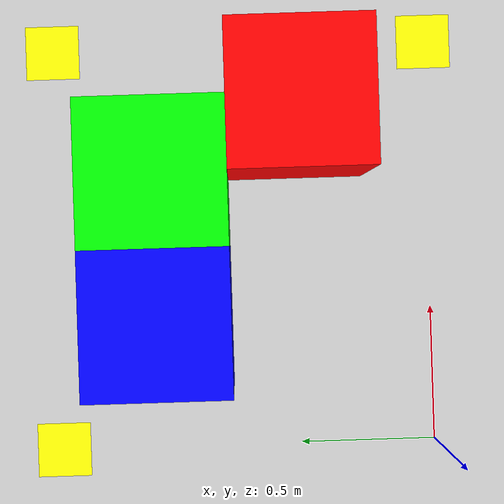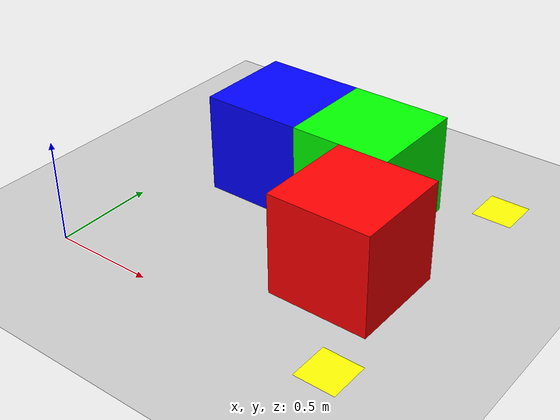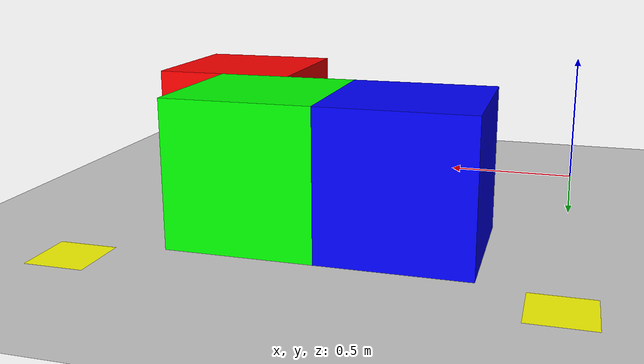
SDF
<sdf version="1.6">
 <world name="test_obstacles">
  <include><uri>model://ground_plane</uri></include>
  <include><uri>model://sun</uri></include>
  <model name="box1">
   <static>true</static>
   <pose>1.25 0.5 0.25 0 0 0</pose>
   <link name="link">
    <collision name="collision"><geometry><box><size>0.5 0.5 0.5</size></box></geometry></collision>
    <visual name="visual">
     <geometry><box><size>0.5 0.5 0.5</size></box></geometry>
     <material><ambient>1 0 0 1</ambient><diffuse>1 0 0 1</diffuse></material>
    </visual>
   </link>
  </model>
  <model name="box2">
   <static>true</static>
   <pose>1.0 1.0 0.25 0 0 0</pose>
   <link name="link">
    <collision name="collision"><geometry><box><size>0.5 0.5 0.5</size></box></geometry></collision>
    <visual name="visual">
     <geometry><box><size>0.5 0.5 0.5</size></box></geometry>
     <material><ambient>0 1 0 1</ambient><diffuse>0 1 0 1</diffuse></material>
    </visual>
   </link>
  </model>
  <model name="box3">
   <static>true</static>
   <pose>0.5 1.0 0.25 0 0 0</pose>
   <link name="link">
    <collision name="collision"><geometry><box><size>0.5 0.5 0.5</size></box></geometry></collision>
    <visual name="visual">
     <geometry><box><size>0.5 0.5 0.5</size></box></geometry>
     <material><ambient>0 0 1 1</ambient><diffuse>0 0 1 1</diffuse></material>
    </visual>
   </link>
  </model>
  <model name="waypoint1">
   <static>true</static>
   <pose>1.5 0 0.01 0 0 0</pose>
   <link name="link">
    <visual name="visual">
     <geometry><box><size>0.2 0.2 0</size></box></geometry>
     <material><ambient>1 1 0 1</ambient><diffuse>1 1 0 1</diffuse></material>
    </visual>
   </link>
  </model>
  <model name="waypoint2">
   <static>true</static>
   <pose>1.5 1.4 0.01 0 0 0</pose>
   <link name="link">
    <visual name="visual">
     <geometry><box><size>0.2 0.2 0</size></box></geometry>
     <material><ambient>1 1 0 1</ambient><diffuse>1 1 0 1</diffuse></material>
    </visual>
   </link>
  </model>
  <model name="waypoint3">
   <static>true</static>
   <pose>0 1.4 0.01 0 0 0</pose>
   <link name="link">
    <visual name="visual">
     <geometry><box><size>0.2 0.2 0</size></box></geometry>
     <material><ambient>1 1 0 1</ambient><diffuse>1 1 0 1</diffuse></material>
    </visual>
   </link>
  </model>
 </world>
</sdf>
